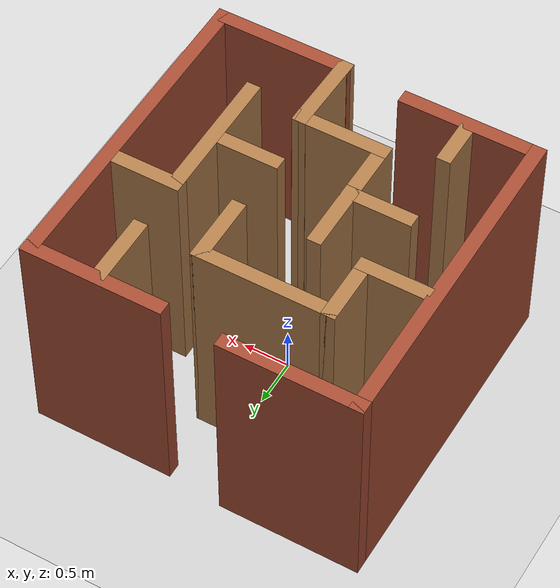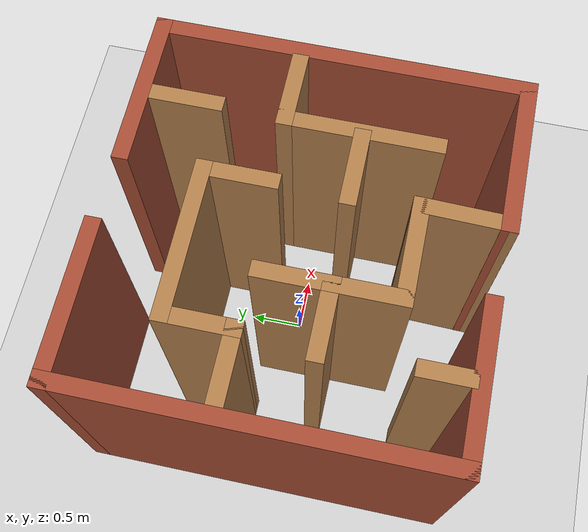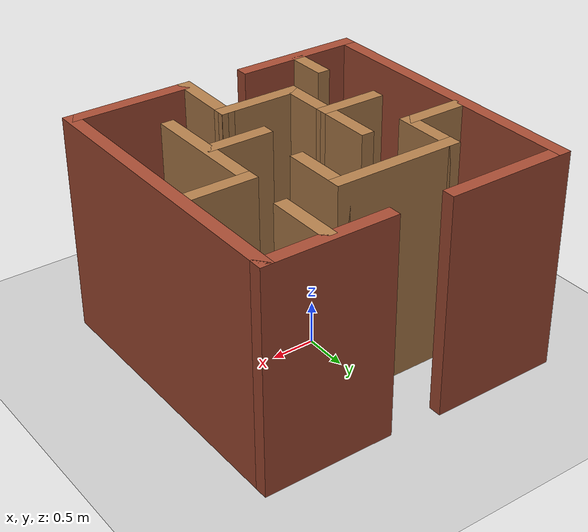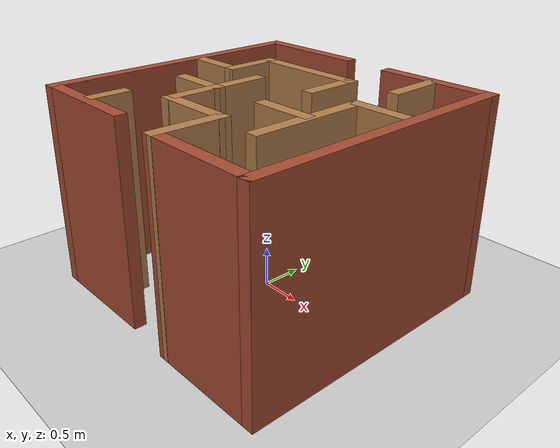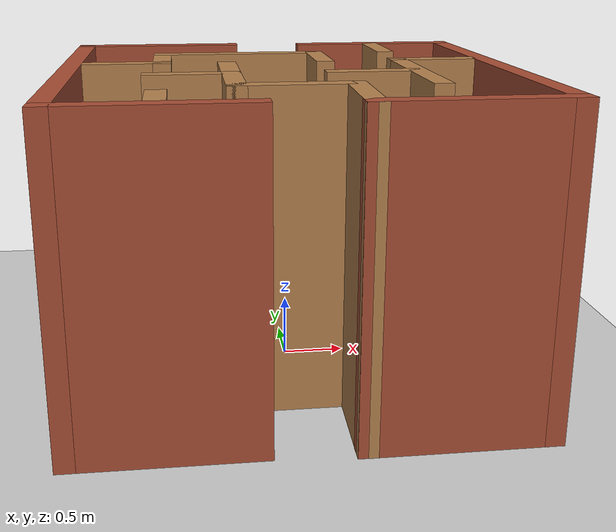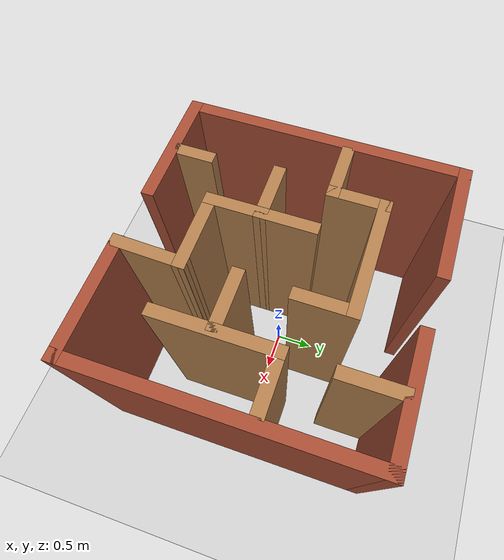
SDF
<sdf version="1.7">
 <world name="default">
  <light name="sun" type="directional">
   <pose>0 0 10 0 -0 0</pose>
   <diffuse>0.8 0.8 0.8 1</diffuse>
   <specular>0.2 0.2 0.2 1</specular>
   <attenuation>
    <range>1000</range>
    <constant>0.9</constant>
    <linear>0.01</linear>
    <quadratic>0.001</quadratic>
   </attenuation>
   <direction>-0.5 0.1 -0.9</direction>
   <spot><inner_angle>0</inner_angle><outer_angle>0</outer_angle><falloff>0</falloff></spot>
  </light>
  <model name="ground_plane">
   <static>1</static>
   <link name="link">
    <collision name="collision">
     <geometry><plane><normal>0 0 1</normal><size>100 100</size></plane></geometry>
     <surface><friction><ode><mu>100</mu><mu2>50</mu2></ode></friction></surface>
    </collision>
    <visual name="visual">
     <cast_shadows>0</cast_shadows>
     <geometry><plane><normal>0 0 1</normal><size>100 100</size></plane></geometry>
     <material>
      <script><uri>file://media/materials/scripts/gazebo.material</uri><name>Gazebo/Grey</name></script>
     </material>
    </visual>
   </link>
  </model>
  <gravity>0 0 -9.8</gravity>
  <magnetic_field>6e-06 2.3e-05 -4.2e-05</magnetic_field>
  <atmosphere type="adiabatic"/>
  <physics type="ode">
   <max_step_size>0.001</max_step_size>
   <real_time_factor>1</real_time_factor>
   <real_time_update_rate>1000</real_time_update_rate>
  </physics>
  <scene><ambient>0.4 0.4 0.4 1</ambient><background>0.7 0.7 0.7 1</background><shadows>1</shadows></scene>
  <audio><device>default</device></audio>
  <spherical_coordinates>
   <surface_model>EARTH_WGS84</surface_model>
   <latitude_deg>0</latitude_deg>
   <longitude_deg>0</longitude_deg>
   <elevation>0</elevation>
   <heading_deg>0</heading_deg>
  </spherical_coordinates>
  <model name="maze_model">
   <pose>0.015 -0.010986 0 0 -0 0</pose>
   <link name="Wall_0">
    <collision name="Wall_0_Collision">
     <geometry><box><size>1.5 0.15 2.5</size></box></geometry>
     <pose>0 0 1.25 0 -0 0</pose>
    </collision>
    <visual name="Wall_0_Visual">
     <pose>0 0 1.25 0 -0 0</pose>
     <geometry><box><size>1.5 0.15 2.5</size></box></geometry>
     <material>
      <script><uri>file://media/materials/scripts/gazebo.material</uri><name>Gazebo/Bricks</name></script>
      <ambient>1 1 1 1</ambient>
     </material>
     <meta><layer>0</layer></meta>
    </visual>
    <pose>-1.04 1.70099 0 0 -0 3.14159</pose>
   </link>
   <link name="Wall_1">
    <collision name="Wall_1_Collision">
     <geometry><box><size>3.5 0.15 2.5</size></box></geometry>
     <pose>0 0 1.25 0 -0 0</pose>
    </collision>
    <visual name="Wall_1_Visual">
     <pose>0 0 1.25 0 -0 0</pose>
     <geometry><box><size>3.5 0.15 2.5</size></box></geometry>
     <material>
      <script><uri>file://media/materials/scripts/gazebo.material</uri><name>Gazebo/Bricks</name></script>
      <ambient>1 1 1 1</ambient>
     </material>
     <meta><layer>0</layer></meta>
    </visual>
    <pose>-1.715 0.025986 0 0 -0 -1.5708</pose>
   </link>
   <link name="Wall_10">
    <collision name="Wall_10_Collision">
     <geometry><box><size>1.5 0.15 2.5</size></box></geometry>
     <pose>0 0 1.25 0 -0 0</pose>
    </collision>
    <visual name="Wall_10_Visual">
     <pose>0 0 1.25 0 -0 0</pose>
     <geometry><box><size>1.5 0.15 2.5</size></box></geometry>
     <material>
      <script><uri>file://media/materials/scripts/gazebo.material</uri><name>Gazebo/Wood</name></script>
      <ambient>1 1 1 1</ambient>
     </material>
     <meta><layer>0</layer></meta>
    </visual>
    <pose>-0.32 0.930986 0 0 -0 0</pose>
   </link>
   <link name="Wall_11">
    <collision name="Wall_11_Collision">
     <geometry><box><size>0.75 0.15 2.5</size></box></geometry>
     <pose>0 0 1.25 0 -0 0</pose>
    </collision>
    <visual name="Wall_11_Visual">
     <pose>0 0 1.25 0 -0 0</pose>
     <geometry><box><size>0.75 0.15 2.5</size></box></geometry>
     <material>
      <script><uri>file://media/materials/scripts/gazebo.material</uri><name>Gazebo/Wood</name></script>
      <ambient>1 1 1 1</ambient>
     </material>
     <meta><layer>0</layer></meta>
    </visual>
    <pose>0.355 0.630986 0 0 -0 -1.5708</pose>
   </link>
   <link name="Wall_13">
    <collision name="Wall_13_Collision">
     <geometry><box><size>0.5 0.15 2.5</size></box></geometry>
     <pose>0 0 1.25 0 -0 0</pose>
    </collision>
    <visual name="Wall_13_Visual">
     <pose>0 0 1.25 0 -0 0</pose>
     <geometry><box><size>0.5 0.15 2.5</size></box></geometry>
     <material>
      <script><uri>file://media/materials/scripts/gazebo.material</uri><name>Gazebo/Wood</name></script>
      <ambient>1 1 1 1</ambient>
     </material>
     <meta><layer>0</layer></meta>
    </visual>
    <pose>-1.015 -1.37401 0 0 -0 1.5708</pose>
   </link>
   <link name="Wall_15">
    <collision name="Wall_15_Collision">
     <geometry><box><size>0.75 0.15 2.5</size></box></geometry>
     <pose>0 0 1.25 0 -0 0</pose>
    </collision>
    <visual name="Wall_15_Visual">
     <pose>0 0 1.25 0 -0 0</pose>
     <geometry><box><size>0.75 0.15 2.5</size></box></geometry>
     <material>
      <script><uri>file://media/materials/scripts/gazebo.material</uri><name>Gazebo/Wood</name></script>
      <ambient>1 1 1 1</ambient>
     </material>
     <meta><layer>0</layer></meta>
    </visual>
    <pose>-0.765 -0.349014 0 0 -0 0</pose>
   </link>
   <link name="Wall_17">
    <collision name="Wall_17_Collision">
     <geometry><box><size>0.75 0.15 2.5</size></box></geometry>
     <pose>0 0 1.25 0 -0 0</pose>
    </collision>
    <visual name="Wall_17_Visual">
     <pose>0 0 1.25 0 -0 0</pose>
     <geometry><box><size>0.75 0.15 2.5</size></box></geometry>
     <material>
      <script><uri>file://media/materials/scripts/gazebo.material</uri><name>Gazebo/Wood</name></script>
      <ambient>1 1 1 1</ambient>
     </material>
     <meta><layer>0</layer></meta>
    </visual>
    <pose>-0.465 -0.049014 0 0 -0 1.5708</pose>
   </link>
   <link name="Wall_19">
    <collision name="Wall_19_Collision">
     <geometry><box><size>0.75 0.15 2.5</size></box></geometry>
     <pose>0 0 1.25 0 -0 0</pose>
    </collision>
    <visual name="Wall_19_Visual">
     <pose>0 0 1.25 0 -0 0</pose>
     <geometry><box><size>0.75 0.15 2.5</size></box></geometry>
     <material>
      <script><uri>file://media/materials/scripts/gazebo.material</uri><name>Gazebo/Wood</name></script>
      <ambient>1 1 1 1</ambient>
     </material>
     <meta><layer>0</layer></meta>
    </visual>
    <pose>-0.465 -0.649014 0 0 -0 -1.5708</pose>
   </link>
   <link name="Wall_2">
    <collision name="Wall_2_Collision">
     <geometry><box><size>1.5 0.15 2.5</size></box></geometry>
     <pose>0 0 1.25 0 -0 0</pose>
    </collision>
    <visual name="Wall_2_Visual">
     <pose>0 0 1.25 0 -0 0</pose>
     <geometry><box><size>1.5 0.15 2.5</size></box></geometry>
     <material>
      <script><uri>file://media/materials/scripts/gazebo.material</uri><name>Gazebo/Bricks</name></script>
      <ambient>1 1 1 1</ambient>
     </material>
     <meta><layer>0</layer></meta>
    </visual>
    <pose>-1.04 -1.64901 0 0 -0 0</pose>
   </link>
   <link name="Wall_20">
    <collision name="Wall_20_Collision">
     <geometry><box><size>1 0.15 2.5</size></box></geometry>
     <pose>0 0 1.25 0 -0 0</pose>
    </collision>
    <visual name="Wall_20_Visual">
     <pose>0 0 1.25 0 -0 0</pose>
     <geometry><box><size>1 0.15 2.5</size></box></geometry>
     <material>
      <script><uri>file://media/materials/scripts/gazebo.material</uri><name>Gazebo/Wood</name></script>
      <ambient>1 1 1 1</ambient>
     </material>
     <meta><layer>0</layer></meta>
    </visual>
    <pose>-0.04 -0.949014 0 0 -0 0</pose>
   </link>
   <link name="Wall_21">
    <collision name="Wall_21_Collision">
     <geometry><box><size>0.900267 0.15 2.5</size></box></geometry>
     <pose>0 0 1.25 0 -0 0</pose>
    </collision>
    <visual name="Wall_21_Visual">
     <pose>0 0 1.25 0 -0 0</pose>
     <geometry><box><size>0.900267 0.15 2.5</size></box></geometry>
     <material>
      <script><uri>file://media/materials/scripts/gazebo.material</uri><name>Gazebo/Wood</name></script>
      <ambient>1 1 1 1</ambient>
     </material>
     <meta><layer>0</layer></meta>
    </visual>
    <pose>0.375 -1.32401 0 0 -0 -1.59746</pose>
   </link>
   <link name="Wall_23">
    <collision name="Wall_23_Collision">
     <geometry><box><size>0.75 0.15 2.5</size></box></geometry>
     <pose>0 0 1.25 0 -0 0</pose>
    </collision>
    <visual name="Wall_23_Visual">
     <pose>0 0 1.25 0 -0 0</pose>
     <geometry><box><size>0.75 0.15 2.5</size></box></geometry>
     <material>
      <script><uri>file://media/materials/scripts/gazebo.material</uri><name>Gazebo/Wood</name></script>
      <ambient>1 1 1 1</ambient>
     </material>
     <meta><layer>0</layer></meta>
    </visual>
    <pose>0.635 -0.339014 0 0 -0 0</pose>
   </link>
   <link name="Wall_29">
    <collision name="Wall_29_Collision">
     <geometry><box><size>0.75 0.15 2.5</size></box></geometry>
     <pose>0 0 1.25 0 -0 0</pose>
    </collision>
    <visual name="Wall_29_Visual">
     <pose>0 0 1.25 0 -0 0</pose>
     <geometry><box><size>0.75 0.15 2.5</size></box></geometry>
     <material>
      <script><uri>file://media/materials/scripts/gazebo.material</uri><name>Gazebo/Wood</name></script>
      <ambient>1 1 1 1</ambient>
     </material>
     <meta><layer>0</layer></meta>
    </visual>
    <pose>1.285 0.350986 0 0 -0 3.14159</pose>
   </link>
   <link name="Wall_30">
    <collision name="Wall_30_Collision">
     <geometry><box><size>1.5 0.15 2.5</size></box></geometry>
     <pose>0 0 1.25 0 -0 0</pose>
    </collision>
    <visual name="Wall_30_Visual">
     <pose>0 0 1.25 0 -0 0</pose>
     <geometry><box><size>1.5 0.15 2.5</size></box></geometry>
     <material>
      <script><uri>file://media/materials/scripts/gazebo.material</uri><name>Gazebo/Wood</name></script>
      <ambient>1 1 1 1</ambient>
     </material>
     <meta><layer>0</layer></meta>
    </visual>
    <pose>0.985 -0.324014 0 0 -0 -1.5708</pose>
   </link>
   <link name="Wall_32">
    <collision name="Wall_32_Collision">
     <geometry><box><size>0.75 0.15 2.5</size></box></geometry>
     <pose>0 0 1.25 0 -0 0</pose>
    </collision>
    <visual name="Wall_32_Visual">
     <pose>0 0 1.25 0 -0 0</pose>
     <geometry><box><size>0.75 0.15 2.5</size></box></geometry>
     <material>
      <script><uri>file://media/materials/scripts/gazebo.material</uri><name>Gazebo/Wood</name></script>
      <ambient>1 1 1 1</ambient>
     </material>
     <meta><layer>0</layer></meta>
    </visual>
    <pose>1.005 1.28099 0 0 -0 -1.5708</pose>
   </link>
   <link name="Wall_4">
    <collision name="Wall_4_Collision">
     <geometry><box><size>1.5 0.15 2.5</size></box></geometry>
     <pose>0 0 1.25 0 -0 0</pose>
    </collision>
    <visual name="Wall_4_Visual">
     <pose>0 0 1.25 0 -0 0</pose>
     <geometry><box><size>1.5 0.15 2.5</size></box></geometry>
     <material>
      <script><uri>file://media/materials/scripts/gazebo.material</uri><name>Gazebo/Bricks</name></script>
      <ambient>1 1 1 1</ambient>
     </material>
     <meta><layer>0</layer></meta>
    </visual>
    <pose>1.04 -1.69901 0 0 -0 0</pose>
   </link>
   <link name="Wall_5">
    <collision name="Wall_5_Collision">
     <geometry><box><size>3.5 0.15 2.5</size></box></geometry>
     <pose>0 0 1.25 0 -0 0</pose>
    </collision>
    <visual name="Wall_5_Visual">
     <pose>0 0 1.25 0 -0 0</pose>
     <geometry><box><size>3.5 0.15 2.5</size></box></geometry>
     <material>
      <script><uri>file://media/materials/scripts/gazebo.material</uri><name>Gazebo/Bricks</name></script>
      <ambient>1 1 1 1</ambient>
     </material>
     <meta><layer>0</layer></meta>
    </visual>
    <pose>1.715 -0.024014 0 0 -0 1.5708</pose>
   </link>
   <link name="Wall_6">
    <collision name="Wall_6_Collision">
     <geometry><box><size>1.5 0.15 2.5</size></box></geometry>
     <pose>0 0 1.25 0 -0 0</pose>
    </collision>
    <visual name="Wall_6_Visual">
     <pose>0 0 1.25 0 -0 0</pose>
     <geometry><box><size>1.5 0.15 2.5</size></box></geometry>
     <material>
      <script><uri>file://media/materials/scripts/gazebo.material</uri><name>Gazebo/Bricks</name></script>
      <ambient>1 1 1 1</ambient>
     </material>
     <meta><layer>0</layer></meta>
    </visual>
    <pose>1.04 1.65099 0 0 -0 3.14159</pose>
   </link>
   <link name="Wall_8">
    <collision name="Wall_8_Collision">
     <geometry><box><size>0.75 0.15 2.5</size></box></geometry>
     <pose>0 0 1.25 0 -0 0</pose>
    </collision>
    <visual name="Wall_8_Visual">
     <pose>0 0 1.25 0 -0 0</pose>
     <geometry><box><size>0.75 0.15 2.5</size></box></geometry>
     <material>
      <script><uri>file://media/materials/scripts/gazebo.material</uri><name>Gazebo/Wood</name></script>
      <ambient>1 1 1 1</ambient>
     </material>
     <meta><layer>0</layer></meta>
    </visual>
    <pose>-1.295 0.330986 0 0 -0 0</pose>
   </link>
   <link name="Wall_9">
    <collision name="Wall_9_Collision">
     <geometry><box><size>0.75 0.15 2.5</size></box></geometry>
     <pose>0 0 1.25 0 -0 0</pose>
    </collision>
    <visual name="Wall_9_Visual">
     <pose>0 0 1.25 0 -0 0</pose>
     <geometry><box><size>0.75 0.15 2.5</size></box></geometry>
     <material>
      <script><uri>file://media/materials/scripts/gazebo.material</uri><name>Gazebo/Wood</name></script>
      <ambient>1 1 1 1</ambient>
     </material>
     <meta><layer>0</layer></meta>
    </visual>
    <pose>-0.995 0.630986 0 0 -0 1.5708</pose>
   </link>
   <static>1</static>
  </model>
 </world>
</sdf>
